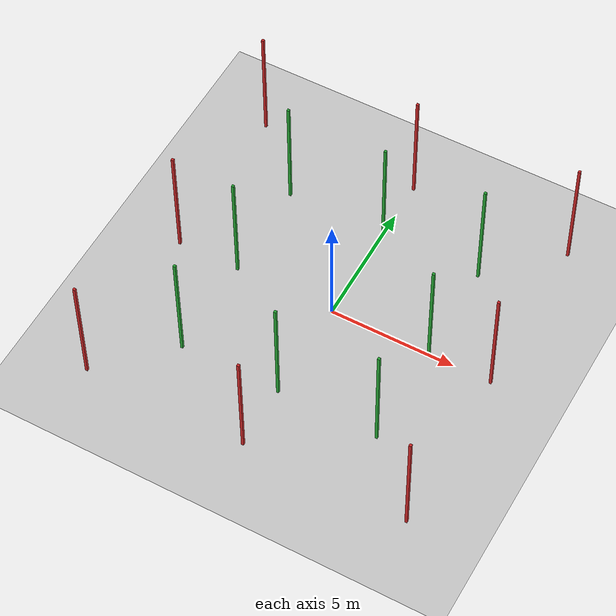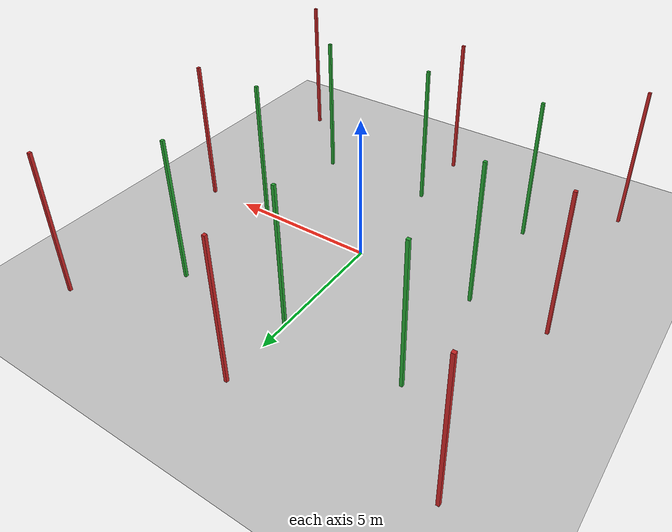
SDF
<sdf version="1.6">
 <world name="default">
  <light name="sun" type="directional">
   <pose>0 0 10 0 -0 0</pose>
   <diffuse>0.8 0.8 0.8 1</diffuse>
   <specular>0.2 0.2 0.2 1</specular>
   <attenuation>
    <range>1000</range>
    <constant>0.9</constant>
    <linear>0.01</linear>
    <quadratic>0.001</quadratic>
   </attenuation>
   <direction>-0.5 0.1 -0.9</direction>
  </light>
  <model name="ground_plane">
   <static>1</static>
   <link name="link">
    <collision name="collision">
     <geometry><plane><normal>0 0 1</normal><size>100 100</size></plane></geometry>
     <surface>
      <contact><collide_bitmask>65535</collide_bitmask></contact>
      <friction><ode><mu>100</mu><mu2>50</mu2></ode></friction>
     </surface>
    </collision>
    <visual name="visual">
     <cast_shadows>0</cast_shadows>
     <geometry><plane><normal>0 0 1</normal><size>100 100</size></plane></geometry>
     <material>
      <script><uri>file://media/materials/scripts/gazebo.material</uri><name>Gazebo/Grey</name></script>
     </material>
    </visual>
    <inertial>
     <inertia><ixx>1</ixx><ixy>0</ixy><ixz>0</ixz><iyy>1</iyy><iyz>0</iyz><izz>1</izz></inertia>
     <mass>1</mass>
    </inertial>
   </link>
  </model>
  <gravity>0 0 -9.8</gravity>
  <magnetic_field>6e-06 2.3e-05 -4.2e-05</magnetic_field>
  <atmosphere type="adiabatic"/>
  <physics name="default_physics" default="0" type="ode">
   <max_step_size>0.001</max_step_size>
   <real_time_factor>1</real_time_factor>
   <real_time_update_rate>1000</real_time_update_rate>
  </physics>
  <scene><ambient>0.4 0.4 0.4 1</ambient><background>0.7 0.7 0.7 1</background><shadows>1</shadows></scene>
  <audio><device>default</device></audio>
  <spherical_coordinates>
   <surface_model>EARTH_WGS84</surface_model>
   <latitude_deg>0</latitude_deg>
   <longitude_deg>0</longitude_deg>
   <elevation>0</elevation>
   <heading_deg>0</heading_deg>
  </spherical_coordinates>
  <model name="asphalt_plane">
   <static>1</static>
   <link name="link">
    <collision name="collision">
     <geometry><box><size>9e-05 9e-05 0.1</size></box></geometry>
     <max_contacts>100</max_contacts>
    </collision>
    <visual name="visual">
     <cast_shadows>0</cast_shadows>
     <geometry><box><size>9e-05 9e-05 0.1</size></box></geometry>
     <material>
      <script>
       <uri>model://asphalt_plane/materials/scripts</uri>
       <uri>model://asphalt_plane/materials/textures</uri>
       <name>vrc/asphalt</name>
      </script>
     </material>
    </visual>
   </link>
   <pose>0.021934 0.021135 0 0 -0 0</pose>
  </model>
  <model name="unit_box_0_clone">
   <static>1</static>
   <pose>4 -4 2.5 0 -0 0</pose>
   <link name="link">
    <inertial>
     <mass>1</mass>
     <inertia>
      <ixx>0.166667</ixx>
      <ixy>0</ixy>
      <ixz>0</ixz>
      <iyy>0.166667</iyy>
      <iyz>0</iyz>
      <izz>0.166667</izz>
     </inertia>
    </inertial>
    <collision name="collision"><geometry><box><size>0.1 0.1 5</size></box></geometry></collision>
    <visual name="visual">
     <geometry><box><size>0.1 0.1 5</size></box></geometry>
     <material>
      <script><name>Gazebo/Green</name><uri>file://media/materials/scripts/gazebo.material</uri></script>
     </material>
    </visual>
   </link>
  </model>
  <model name="unit_box_clone_0">
   <pose>-6.5 -6.5 2.5 0 -0 0</pose>
   <static>1</static>
   <link name="link">
    <inertial>
     <mass>1</mass>
     <inertia>
      <ixx>0.166667</ixx>
      <ixy>0</ixy>
      <ixz>0</ixz>
      <iyy>0.166667</iyy>
      <iyz>0</iyz>
      <izz>0.166667</izz>
     </inertia>
    </inertial>
    <collision name="collision"><geometry><box><size>0.1 0.1 5</size></box></geometry></collision>
    <visual name="visual">
     <geometry><box><size>0.1 0.1 5</size></box></geometry>
     <material>
      <script><name>Gazebo/Red</name><uri>file://media/materials/scripts/gazebo.material</uri></script>
     </material>
    </visual>
   </link>
  </model>
  <model name="unit_box_clone_2">
   <pose>-6.5 6.5 2.5 0 -0 0</pose>
   <static>1</static>
   <link name="link">
    <inertial>
     <mass>1</mass>
     <inertia>
      <ixx>0.166667</ixx>
      <ixy>0</ixy>
      <ixz>0</ixz>
      <iyy>0.166667</iyy>
      <iyz>0</iyz>
      <izz>0.166667</izz>
     </inertia>
    </inertial>
    <collision name="collision"><geometry><box><size>0.1 0.1 5</size></box></geometry></collision>
    <visual name="visual">
     <geometry><box><size>0.1 0.1 5</size></box></geometry>
     <material>
      <script><name>Gazebo/Red</name><uri>file://media/materials/scripts/gazebo.material</uri></script>
     </material>
    </visual>
   </link>
  </model>
  <model name="unit_box_clone_3">
   <pose>0 6.5 2.5 0 -0 0</pose>
   <static>1</static>
   <link name="link">
    <inertial>
     <mass>1</mass>
     <inertia>
      <ixx>0.166667</ixx>
      <ixy>0</ixy>
      <ixz>0</ixz>
      <iyy>0.166667</iyy>
      <iyz>0</iyz>
      <izz>0.166667</izz>
     </inertia>
    </inertial>
    <collision name="collision"><geometry><box><size>0.1 0.1 5</size></box></geometry></collision>
    <visual name="visual">
     <geometry><box><size>0.1 0.1 5</size></box></geometry>
     <material>
      <script><name>Gazebo/Red</name><uri>file://media/materials/scripts/gazebo.material</uri></script>
     </material>
    </visual>
   </link>
  </model>
  <model name="unit_box_0_clone_0">
   <static>1</static>
   <pose>-4 -4 2.5 0 -0 0</pose>
   <link name="link">
    <inertial>
     <mass>1</mass>
     <inertia>
      <ixx>0.166667</ixx>
      <ixy>0</ixy>
      <ixz>0</ixz>
      <iyy>0.166667</iyy>
      <iyz>0</iyz>
      <izz>0.166667</izz>
     </inertia>
    </inertial>
    <collision name="collision"><geometry><box><size>0.1 0.1 5</size></box></geometry></collision>
    <visual name="visual">
     <geometry><box><size>0.1 0.1 5</size></box></geometry>
     <material>
      <script><name>Gazebo/Green</name><uri>file://media/materials/scripts/gazebo.material</uri></script>
     </material>
    </visual>
   </link>
  </model>
  <model name="unit_box_0_clone_2">
   <static>1</static>
   <pose>-4 4 2.5 0 -0 0</pose>
   <link name="link">
    <inertial>
     <mass>1</mass>
     <inertia>
      <ixx>0.166667</ixx>
      <ixy>0</ixy>
      <ixz>0</ixz>
      <iyy>0.166667</iyy>
      <iyz>0</iyz>
      <izz>0.166667</izz>
     </inertia>
    </inertial>
    <collision name="collision"><geometry><box><size>0.1 0.1 5</size></box></geometry></collision>
    <visual name="visual">
     <geometry><box><size>0.1 0.1 5</size></box></geometry>
     <material>
      <script><name>Gazebo/Green</name><uri>file://media/materials/scripts/gazebo.material</uri></script>
     </material>
    </visual>
   </link>
  </model>
  <model name="unit_box_0_clone_3">
   <static>1</static>
   <pose>0 -4 2.5 0 -0 0</pose>
   <link name="link">
    <inertial>
     <mass>1</mass>
     <inertia>
      <ixx>0.166667</ixx>
      <ixy>0</ixy>
      <ixz>0</ixz>
      <iyy>0.166667</iyy>
      <iyz>0</iyz>
      <izz>0.166667</izz>
     </inertia>
    </inertial>
    <collision name="collision"><geometry><box><size>0.1 0.1 5</size></box></geometry></collision>
    <visual name="visual">
     <geometry><box><size>0.1 0.1 5</size></box></geometry>
     <material>
      <script><name>Gazebo/Green</name><uri>file://media/materials/scripts/gazebo.material</uri></script>
     </material>
    </visual>
   </link>
  </model>
  <model name="unit_box_0_clone_3_clone">
   <static>1</static>
   <pose>0 4 2.5 0 -0 0</pose>
   <link name="link">
    <inertial>
     <mass>1</mass>
     <inertia>
      <ixx>0.166667</ixx>
      <ixy>0</ixy>
      <ixz>0</ixz>
      <iyy>0.166667</iyy>
      <iyz>0</iyz>
      <izz>0.166667</izz>
     </inertia>
    </inertial>
    <collision name="collision"><geometry><box><size>0.1 0.1 5</size></box></geometry></collision>
    <visual name="visual">
     <geometry><box><size>0.1 0.1 5</size></box></geometry>
     <material>
      <script><name>Gazebo/Green</name><uri>file://media/materials/scripts/gazebo.material</uri></script>
     </material>
    </visual>
   </link>
  </model>
  <model name="unit_box_clone_3_clone">
   <pose>-6.5 0 2.5 0 -0 0</pose>
   <static>1</static>
   <link name="link">
    <inertial>
     <mass>1</mass>
     <inertia>
      <ixx>0.166667</ixx>
      <ixy>0</ixy>
      <ixz>0</ixz>
      <iyy>0.166667</iyy>
      <iyz>0</iyz>
      <izz>0.166667</izz>
     </inertia>
    </inertial>
    <collision name="collision"><geometry><box><size>0.1 0.1 5</size></box></geometry></collision>
    <visual name="visual">
     <geometry><box><size>0.1 0.1 5</size></box></geometry>
     <material>
      <script><name>Gazebo/Red</name><uri>file://media/materials/scripts/gazebo.material</uri></script>
     </material>
    </visual>
   </link>
  </model>
  <model name="unit_box_clone_3_clone_1">
   <pose>6.5 -6.5 2.5 0 -0 0</pose>
   <static>1</static>
   <link name="link">
    <inertial>
     <mass>1</mass>
     <inertia>
      <ixx>0.166667</ixx>
      <ixy>0</ixy>
      <ixz>0</ixz>
      <iyy>0.166667</iyy>
      <iyz>0</iyz>
      <izz>0.166667</izz>
     </inertia>
    </inertial>
    <collision name="collision"><geometry><box><size>0.1 0.1 5</size></box></geometry></collision>
    <visual name="visual">
     <geometry><box><size>0.1 0.1 5</size></box></geometry>
     <material>
      <script><name>Gazebo/Red</name><uri>file://media/materials/scripts/gazebo.material</uri></script>
     </material>
    </visual>
   </link>
  </model>
  <model name="unit_box_clone_3_clone_0">
   <pose>0 -6.5 2.5 0 -0 0</pose>
   <static>1</static>
   <link name="link">
    <inertial>
     <mass>1</mass>
     <inertia>
      <ixx>0.166667</ixx>
      <ixy>0</ixy>
      <ixz>0</ixz>
      <iyy>0.166667</iyy>
      <iyz>0</iyz>
      <izz>0.166667</izz>
     </inertia>
    </inertial>
    <collision name="collision"><geometry><box><size>0.1 0.1 5</size></box></geometry></collision>
    <visual name="visual">
     <geometry><box><size>0.1 0.1 5</size></box></geometry>
     <material>
      <script><name>Gazebo/Red</name><uri>file://media/materials/scripts/gazebo.material</uri></script>
     </material>
    </visual>
   </link>
  </model>
  <model name="unit_box_0_clone_2_clone">
   <static>1</static>
   <pose>-4 0 2.5 0 -0 0</pose>
   <link name="link">
    <inertial>
     <mass>1</mass>
     <inertia>
      <ixx>0.166667</ixx>
      <ixy>0</ixy>
      <ixz>0</ixz>
      <iyy>0.166667</iyy>
      <iyz>0</iyz>
      <izz>0.166667</izz>
     </inertia>
    </inertial>
    <collision name="collision"><geometry><box><size>0.1 0.1 5</size></box></geometry></collision>
    <visual name="visual">
     <geometry><box><size>0.1 0.1 5</size></box></geometry>
     <material>
      <script><name>Gazebo/Green</name><uri>file://media/materials/scripts/gazebo.material</uri></script>
     </material>
    </visual>
   </link>
  </model>
  <model name="unit_box_0_clone_3_clone_clone">
   <static>1</static>
   <pose>3.98826 4.01879 2.5 0 -0 0</pose>
   <link name="link">
    <inertial>
     <mass>1</mass>
     <inertia>
      <ixx>0.166667</ixx>
      <ixy>0</ixy>
      <ixz>0</ixz>
      <iyy>0.166667</iyy>
      <iyz>0</iyz>
      <izz>0.166667</izz>
     </inertia>
    </inertial>
    <collision name="collision"><geometry><box><size>0.1 0.1 5</size></box></geometry></collision>
    <visual name="visual">
     <geometry><box><size>0.1 0.1 5</size></box></geometry>
     <material>
      <script><name>Gazebo/Green</name><uri>file://media/materials/scripts/gazebo.material</uri></script>
     </material>
    </visual>
   </link>
  </model>
  <model name="unit_box_0_clone_3_clone_clone_0">
   <static>1</static>
   <pose>4 0 2.5 0 -0 0</pose>
   <link name="link">
    <inertial>
     <mass>1</mass>
     <inertia>
      <ixx>0.166667</ixx>
      <ixy>0</ixy>
      <ixz>0</ixz>
      <iyy>0.166667</iyy>
      <iyz>0</iyz>
      <izz>0.166667</izz>
     </inertia>
    </inertial>
    <collision name="collision"><geometry><box><size>0.1 0.1 5</size></box></geometry></collision>
    <visual name="visual">
     <geometry><box><size>0.1 0.1 5</size></box></geometry>
     <material>
      <script><name>Gazebo/Green</name><uri>file://media/materials/scripts/gazebo.material</uri></script>
     </material>
    </visual>
   </link>
  </model>
  <model name="unit_box_clone_3_clone_1_clone">
   <pose>6.5 0.007092 2.5 0 -0 0</pose>
   <static>1</static>
   <link name="link">
    <inertial>
     <mass>1</mass>
     <inertia>
      <ixx>0.166667</ixx>
      <ixy>0</ixy>
      <ixz>0</ixz>
      <iyy>0.166667</iyy>
      <iyz>0</iyz>
      <izz>0.166667</izz>
     </inertia>
    </inertial>
    <collision name="collision"><geometry><box><size>0.1 0.1 5</size></box></geometry></collision>
    <visual name="visual">
     <geometry><box><size>0.1 0.1 5</size></box></geometry>
     <material>
      <script><name>Gazebo/Red</name><uri>file://media/materials/scripts/gazebo.material</uri></script>
     </material>
    </visual>
   </link>
  </model>
  <model name="unit_box_clone_3_clone_1_clone_0">
   <pose>6.5 6.5 2.5 0 -0 0</pose>
   <static>1</static>
   <link name="link">
    <inertial>
     <mass>1</mass>
     <inertia>
      <ixx>0.166667</ixx>
      <ixy>0</ixy>
      <ixz>0</ixz>
      <iyy>0.166667</iyy>
      <iyz>0</iyz>
      <izz>0.166667</izz>
     </inertia>
    </inertial>
    <collision name="collision"><geometry><box><size>0.1 0.1 5</size></box></geometry></collision>
    <visual name="visual">
     <geometry><box><size>0.1 0.1 5</size></box></geometry>
     <material>
      <script><name>Gazebo/Red</name><uri>file://media/materials/scripts/gazebo.material</uri></script>
     </material>
    </visual>
   </link>
  </model>
 </world>
</sdf>
